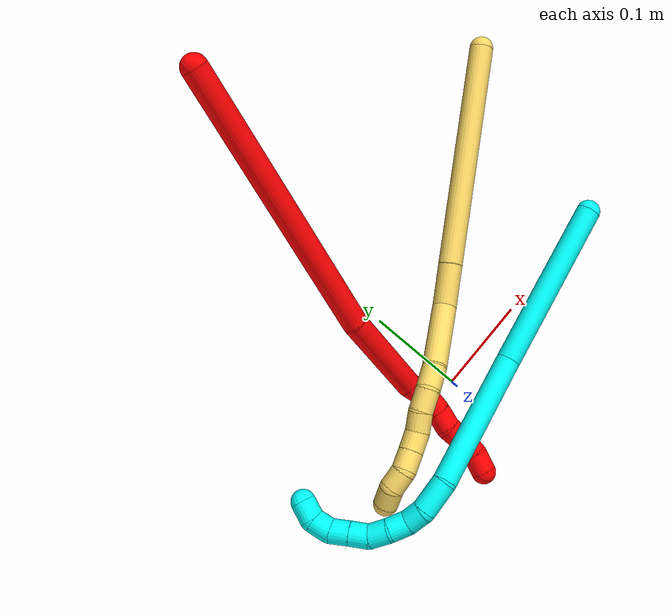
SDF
<sdf version="1.7">
 <world name="default">
  <model name="2">
   <static>0</static>
   <link name="2">
    <collision name="collision-cylinder-e_1_1_4">
     <pose>-0.050486 -0.10319 -0.079267 2.22582 -0.370117 -0.726042</pose>
     <geometry><cylinder><radius>0.0125</radius><length>0.279143</length></cylinder></geometry>
     <surface>
      <friction><ode><mu>1.16</mu><mu2>1.16</mu2><slip1>0</slip1><slip2>0</slip2></ode></friction>
      <contact><ode><kp>1e+06</kp><kd>1</kd><max_vel>0</max_vel><min_depth>0.001</min_depth></ode></contact>
     </surface>
    </collision>
    <visual name="visual-cylinder-e_1_1_4">
     <pose>-0.050486 -0.10319 -0.079267 2.22582 -0.370117 -0.726042</pose>
     <geometry><cylinder><radius>0.0125</radius><length>0.279143</length></cylinder></geometry>
     <material><ambient>1 0 0 1</ambient></material>
    </visual>
    <collision name="collision-cylinder-e_2_4_5">
     <pose>-0.109868 -0.246645 -0.185816 2.16632 -0.180881 -0.338715</pose>
     <geometry><cylinder><radius>0.0125</radius><length>0.098889</length></cylinder></geometry>
     <surface>
      <friction><ode><mu>1.16</mu><mu2>1.16</mu2><slip1>0</slip1><slip2>0</slip2></ode></friction>
      <contact><ode><kp>1e+06</kp><kd>1</kd><max_vel>0</max_vel><min_depth>0.001</min_depth></ode></contact>
     </surface>
    </collision>
    <visual name="visual-cylinder-e_2_4_5">
     <pose>-0.109868 -0.246645 -0.185816 2.16632 -0.180881 -0.338715</pose>
     <geometry><cylinder><radius>0.0125</radius><length>0.098889</length></cylinder></geometry>
     <material><ambient>1 0 0 1</ambient></material>
    </visual>
    <collision name="collision-cylinder-e_3_5_6">
     <pose>-0.122179 -0.296604 -0.214586 1.72296 -0.335178 -0.389202</pose>
     <geometry><cylinder><radius>0.0125</radius><length>0.02077</length></cylinder></geometry>
     <surface>
      <friction><ode><mu>1.16</mu><mu2>1.16</mu2><slip1>0</slip1><slip2>0</slip2></ode></friction>
      <contact><ode><kp>1e+06</kp><kd>1</kd><max_vel>0</max_vel><min_depth>0.001</min_depth></ode></contact>
     </surface>
    </collision>
    <visual name="visual-cylinder-e_3_5_6">
     <pose>-0.122179 -0.296604 -0.214586 1.72296 -0.335178 -0.389202</pose>
     <geometry><cylinder><radius>0.0125</radius><length>0.02077</length></cylinder></geometry>
     <material><ambient>1 0 0 1</ambient></material>
    </visual>
    <collision name="collision-cylinder-e_4_6_7">
     <pose>-0.130624 -0.314691 -0.22006 2.01431 -0.49603 -0.762143</pose>
     <geometry><cylinder><radius>0.0125</radius><length>0.021134</length></cylinder></geometry>
     <surface>
      <friction><ode><mu>1.16</mu><mu2>1.16</mu2><slip1>0</slip1><slip2>0</slip2></ode></friction>
      <contact><ode><kp>1e+06</kp><kd>1</kd><max_vel>0</max_vel><min_depth>0.001</min_depth></ode></contact>
     </surface>
    </collision>
    <visual name="visual-cylinder-e_4_6_7">
     <pose>-0.130624 -0.314691 -0.22006 2.01431 -0.49603 -0.762143</pose>
     <geometry><cylinder><radius>0.0125</radius><length>0.021134</length></cylinder></geometry>
     <material><ambient>1 0 0 1</ambient></material>
    </visual>
    <collision name="collision-cylinder-e_5_7_8">
     <pose>-0.142248 -0.329816 -0.22746 2.03998 -0.718267 -1.09724</pose>
     <geometry><cylinder><radius>0.0125</radius><length>0.020044</length></cylinder></geometry>
     <surface>
      <friction><ode><mu>1.16</mu><mu2>1.16</mu2><slip1>0</slip1><slip2>0</slip2></ode></friction>
      <contact><ode><kp>1e+06</kp><kd>1</kd><max_vel>0</max_vel><min_depth>0.001</min_depth></ode></contact>
     </surface>
    </collision>
    <visual name="visual-cylinder-e_5_7_8">
     <pose>-0.142248 -0.329816 -0.22746 2.03998 -0.718267 -1.09724</pose>
     <geometry><cylinder><radius>0.0125</radius><length>0.020044</length></cylinder></geometry>
     <material><ambient>1 0 0 1</ambient></material>
    </visual>
    <collision name="collision-cylinder-e_6_8_9">
     <pose>-0.152746 -0.345369 -0.23351 1.86127 -0.400814 -0.532524</pose>
     <geometry><cylinder><radius>0.0125</radius><length>0.020001</length></cylinder></geometry>
     <surface>
      <friction><ode><mu>1.16</mu><mu2>1.16</mu2><slip1>0</slip1><slip2>0</slip2></ode></friction>
      <contact><ode><kp>1e+06</kp><kd>1</kd><max_vel>0</max_vel><min_depth>0.001</min_depth></ode></contact>
     </surface>
    </collision>
    <visual name="visual-cylinder-e_6_8_9">
     <pose>-0.152746 -0.345369 -0.23351 1.86127 -0.400814 -0.532524</pose>
     <geometry><cylinder><radius>0.0125</radius><length>0.020001</length></cylinder></geometry>
     <material><ambient>1 0 0 1</ambient></material>
    </visual>
    <collision name="collision-cylinder-e_7_9_10">
     <pose>-0.162995 -0.361774 -0.237665 1.76841 -0.687323 -0.823339</pose>
     <geometry><cylinder><radius>0.0125</radius><length>0.020009</length></cylinder></geometry>
     <surface>
      <friction><ode><mu>1.16</mu><mu2>1.16</mu2><slip1>0</slip1><slip2>0</slip2></ode></friction>
      <contact><ode><kp>1e+06</kp><kd>1</kd><max_vel>0</max_vel><min_depth>0.001</min_depth></ode></contact>
     </surface>
    </collision>
    <visual name="visual-cylinder-e_7_9_10">
     <pose>-0.162995 -0.361774 -0.237665 1.76841 -0.687323 -0.823339</pose>
     <geometry><cylinder><radius>0.0125</radius><length>0.020009</length></cylinder></geometry>
     <material><ambient>1 0 0 1</ambient></material>
    </visual>
    <collision name="collision-cylinder-e_8_10_2">
     <pose>-0.176718 -0.375204 -0.242576 2.09656 -0.828799 -1.30453</pose>
     <geometry><cylinder><radius>0.0125</radius><length>0.02001</length></cylinder></geometry>
     <surface>
      <friction><ode><mu>1.16</mu><mu2>1.16</mu2><slip1>0</slip1><slip2>0</slip2></ode></friction>
      <contact><ode><kp>1e+06</kp><kd>1</kd><max_vel>0</max_vel><min_depth>0.001</min_depth></ode></contact>
     </surface>
    </collision>
    <visual name="visual-cylinder-e_8_10_2">
     <pose>-0.176718 -0.375204 -0.242576 2.09656 -0.828799 -1.30453</pose>
     <geometry><cylinder><radius>0.0125</radius><length>0.02001</length></cylinder></geometry>
     <material><ambient>1 0 0 1</ambient></material>
    </visual>
    <collision name="collision-sphere-2">
     <pose>-0.184092 -0.381052 -0.245969 0 -0 0</pose>
     <geometry><sphere><radius>0.0125</radius></sphere></geometry>
     <surface>
      <friction><ode><mu>1.16</mu><mu2>1.16</mu2><slip1>0</slip1><slip2>0</slip2></ode></friction>
      <contact><ode><kp>1e+06</kp><kd>1</kd><max_vel>0</max_vel><min_depth>0.001</min_depth></ode></contact>
     </surface>
    </collision>
    <visual name="visual-sphere-2">
     <pose>-0.184092 -0.381052 -0.245969 0 -0 0</pose>
     <geometry><sphere><radius>0.0125</radius></sphere></geometry>
     <material><ambient>1 0 0 1</ambient></material>
    </visual>
    <collision name="collision-sphere-10">
     <pose>-0.169343 -0.369356 -0.239183 0 -0 0</pose>
     <geometry><sphere><radius>0.0125</radius></sphere></geometry>
     <surface>
      <friction><ode><mu>1.16</mu><mu2>1.16</mu2><slip1>0</slip1><slip2>0</slip2></ode></friction>
      <contact><ode><kp>1e+06</kp><kd>1</kd><max_vel>0</max_vel><min_depth>0.001</min_depth></ode></contact>
     </surface>
    </collision>
    <visual name="visual-sphere-10">
     <pose>-0.169343 -0.369356 -0.239183 0 -0 0</pose>
     <geometry><sphere><radius>0.0125</radius></sphere></geometry>
     <material><ambient>1 0 0 1</ambient></material>
    </visual>
    <collision name="collision-sphere-9">
     <pose>-0.156647 -0.354191 -0.236147 0 -0 0</pose>
     <geometry><sphere><radius>0.0125</radius></sphere></geometry>
     <surface>
      <friction><ode><mu>1.16</mu><mu2>1.16</mu2><slip1>0</slip1><slip2>0</slip2></ode></friction>
      <contact><ode><kp>1e+06</kp><kd>1</kd><max_vel>0</max_vel><min_depth>0.001</min_depth></ode></contact>
     </surface>
    </collision>
    <visual name="visual-sphere-9">
     <pose>-0.156647 -0.354191 -0.236147 0 -0 0</pose>
     <geometry><sphere><radius>0.0125</radius></sphere></geometry>
     <material><ambient>1 0 0 1</ambient></material>
    </visual>
    <collision name="collision-sphere-4">
     <pose>-0.100973 -0.20638 -0.158533 0 -0 0</pose>
     <geometry><sphere><radius>0.0125</radius></sphere></geometry>
     <surface>
      <friction><ode><mu>1.16</mu><mu2>1.16</mu2><slip1>0</slip1><slip2>0</slip2></ode></friction>
      <contact><ode><kp>1e+06</kp><kd>1</kd><max_vel>0</max_vel><min_depth>0.001</min_depth></ode></contact>
     </surface>
    </collision>
    <visual name="visual-sphere-4">
     <pose>-0.100973 -0.20638 -0.158533 0 -0 0</pose>
     <geometry><sphere><radius>0.0125</radius></sphere></geometry>
     <material><ambient>1 0 0 1</ambient></material>
    </visual>
    <collision name="collision-sphere-1">
     <geometry><sphere><radius>0.0125</radius></sphere></geometry>
     <surface>
      <friction><ode><mu>1.16</mu><mu2>1.16</mu2><slip1>0</slip1><slip2>0</slip2></ode></friction>
      <contact><ode><kp>1e+06</kp><kd>1</kd><max_vel>0</max_vel><min_depth>0.001</min_depth></ode></contact>
     </surface>
    </collision>
    <visual name="visual-sphere-1">
     <geometry><sphere><radius>0.0125</radius></sphere></geometry>
     <material><ambient>1 0 0 1</ambient></material>
    </visual>
    <collision name="collision-sphere-8">
     <pose>-0.148844 -0.336547 -0.230872 0 -0 0</pose>
     <geometry><sphere><radius>0.0125</radius></sphere></geometry>
     <surface>
      <friction><ode><mu>1.16</mu><mu2>1.16</mu2><slip1>0</slip1><slip2>0</slip2></ode></friction>
      <contact><ode><kp>1e+06</kp><kd>1</kd><max_vel>0</max_vel><min_depth>0.001</min_depth></ode></contact>
     </surface>
    </collision>
    <visual name="visual-sphere-8">
     <pose>-0.148844 -0.336547 -0.230872 0 -0 0</pose>
     <geometry><sphere><radius>0.0125</radius></sphere></geometry>
     <material><ambient>1 0 0 1</ambient></material>
    </visual>
    <collision name="collision-sphere-5">
     <pose>-0.118763 -0.28691 -0.2131 0 -0 0</pose>
     <geometry><sphere><radius>0.0125</radius></sphere></geometry>
     <surface>
      <friction><ode><mu>1.16</mu><mu2>1.16</mu2><slip1>0</slip1><slip2>0</slip2></ode></friction>
      <contact><ode><kp>1e+06</kp><kd>1</kd><max_vel>0</max_vel><min_depth>0.001</min_depth></ode></contact>
     </surface>
    </collision>
    <visual name="visual-sphere-5">
     <pose>-0.118763 -0.28691 -0.2131 0 -0 0</pose>
     <geometry><sphere><radius>0.0125</radius></sphere></geometry>
     <material><ambient>1 0 0 1</ambient></material>
    </visual>
    <collision name="collision-sphere-6">
     <pose>-0.125595 -0.306297 -0.216072 0 -0 0</pose>
     <geometry><sphere><radius>0.0125</radius></sphere></geometry>
     <surface>
      <friction><ode><mu>1.16</mu><mu2>1.16</mu2><slip1>0</slip1><slip2>0</slip2></ode></friction>
      <contact><ode><kp>1e+06</kp><kd>1</kd><max_vel>0</max_vel><min_depth>0.001</min_depth></ode></contact>
     </surface>
    </collision>
    <visual name="visual-sphere-6">
     <pose>-0.125595 -0.306297 -0.216072 0 -0 0</pose>
     <geometry><sphere><radius>0.0125</radius></sphere></geometry>
     <material><ambient>1 0 0 1</ambient></material>
    </visual>
    <collision name="collision-sphere-7">
     <pose>-0.135653 -0.323086 -0.224048 0 -0 0</pose>
     <geometry><sphere><radius>0.0125</radius></sphere></geometry>
     <surface>
      <friction><ode><mu>1.16</mu><mu2>1.16</mu2><slip1>0</slip1><slip2>0</slip2></ode></friction>
      <contact><ode><kp>1e+06</kp><kd>1</kd><max_vel>0</max_vel><min_depth>0.001</min_depth></ode></contact>
     </surface>
    </collision>
    <visual name="visual-sphere-7">
     <pose>-0.135653 -0.323086 -0.224048 0 -0 0</pose>
     <geometry><sphere><radius>0.0125</radius></sphere></geometry>
     <material><ambient>1 0 0 1</ambient></material>
    </visual>
    <inertial>
     <pose>-0.085919 -0.188543 -0.136897 0 -0 0</pose>
     <mass>0.5</mass>
     <inertia>
      <ixx>0.000179</ixx>
      <ixy>0</ixy>
      <ixz>0</ixz>
      <iyy>-0.001713</iyy>
      <iyz>0</iyz>
      <izz>0.002084</izz>
     </inertia>
    </inertial>
   </link>
   <pose>0.063946 0.348962 0.239665 0.483252 0.647339 0.787085</pose>
  </model>
  <model name="3">
   <static>0</static>
   <link name="3">
    <collision name="collision-cylinder-e_1_1_4">
     <pose>-0.075205 0.017355 -0.047819 -2.79344 -0.976062 2.50182</pose>
     <geometry><cylinder><radius>0.0125</radius><length>0.181588</length></cylinder></geometry>
     <surface>
      <friction><ode><mu>1.16</mu><mu2>1.16</mu2><slip1>0</slip1><slip2>0</slip2></ode></friction>
      <contact><ode><kp>1e+06</kp><kd>1</kd><max_vel>0</max_vel><min_depth>0.001</min_depth></ode></contact>
     </surface>
    </collision>
    <visual name="visual-cylinder-e_1_1_4">
     <pose>-0.075205 0.017355 -0.047819 -2.79344 -0.976062 2.50182</pose>
     <geometry><cylinder><radius>0.0125</radius><length>0.181588</length></cylinder></geometry>
     <material><ambient>0.003922 1 0.996078 1</ambient></material>
    </visual>
    <collision name="collision-cylinder-e_2_4_5">
     <pose>-0.209282 0.036632 -0.135302 -3.09317 -0.977389 3.05057</pose>
     <geometry><cylinder><radius>0.0125</radius><length>0.142028</length></cylinder></geometry>
     <surface>
      <friction><ode><mu>1.16</mu><mu2>1.16</mu2><slip1>0</slip1><slip2>0</slip2></ode></friction>
      <contact><ode><kp>1e+06</kp><kd>1</kd><max_vel>0</max_vel><min_depth>0.001</min_depth></ode></contact>
     </surface>
    </collision>
    <visual name="visual-cylinder-e_2_4_5">
     <pose>-0.209282 0.036632 -0.135302 -3.09317 -0.977389 3.05057</pose>
     <geometry><cylinder><radius>0.0125</radius><length>0.142028</length></cylinder></geometry>
     <material><ambient>0.003922 1 0.996078 1</ambient></material>
    </visual>
    <collision name="collision-cylinder-e_3_5_6">
     <pose>-0.2835 0.042605 -0.181915 -2.61389 -1.08796 2.30149</pose>
     <geometry><cylinder><radius>0.0125</radius><length>0.03465</length></cylinder></geometry>
     <surface>
      <friction><ode><mu>1.16</mu><mu2>1.16</mu2><slip1>0</slip1><slip2>0</slip2></ode></friction>
      <contact><ode><kp>1e+06</kp><kd>1</kd><max_vel>0</max_vel><min_depth>0.001</min_depth></ode></contact>
     </surface>
    </collision>
    <visual name="visual-cylinder-e_3_5_6">
     <pose>-0.2835 0.042605 -0.181915 -2.61389 -1.08796 2.30149</pose>
     <geometry><cylinder><radius>0.0125</radius><length>0.03465</length></cylinder></geometry>
     <material><ambient>0.003922 1 0.996078 1</ambient></material>
    </visual>
    <collision name="collision-cylinder-e_4_6_7">
     <pose>-0.307837 0.051116 -0.189478 -1.70754 -1.10658 1.23275</pose>
     <geometry><cylinder><radius>0.0125</radius><length>0.020114</length></cylinder></geometry>
     <surface>
      <friction><ode><mu>1.16</mu><mu2>1.16</mu2><slip1>0</slip1><slip2>0</slip2></ode></friction>
      <contact><ode><kp>1e+06</kp><kd>1</kd><max_vel>0</max_vel><min_depth>0.001</min_depth></ode></contact>
     </surface>
    </collision>
    <visual name="visual-cylinder-e_4_6_7">
     <pose>-0.307837 0.051116 -0.189478 -1.70754 -1.10658 1.23275</pose>
     <geometry><cylinder><radius>0.0125</radius><length>0.020114</length></cylinder></geometry>
     <material><ambient>0.003922 1 0.996078 1</ambient></material>
    </visual>
    <collision name="collision-cylinder-e_5_7_8">
     <pose>-0.326971 0.056483 -0.189037 -0.70952 -1.43457 0.625058</pose>
     <geometry><cylinder><radius>0.0125</radius><length>0.020473</length></cylinder></geometry>
     <surface>
      <friction><ode><mu>1.16</mu><mu2>1.16</mu2><slip1>0</slip1><slip2>0</slip2></ode></friction>
      <contact><ode><kp>1e+06</kp><kd>1</kd><max_vel>0</max_vel><min_depth>0.001</min_depth></ode></contact>
     </surface>
    </collision>
    <visual name="visual-cylinder-e_5_7_8">
     <pose>-0.326971 0.056483 -0.189037 -0.70952 -1.43457 0.625058</pose>
     <geometry><cylinder><radius>0.0125</radius><length>0.020473</length></cylinder></geometry>
     <material><ambient>0.003922 1 0.996078 1</ambient></material>
    </visual>
    <collision name="collision-cylinder-e_6_8_9">
     <pose>-0.346859 0.060234 -0.18555 -0.863556 -1.20407 0.61325</pose>
     <geometry><cylinder><radius>0.0125</radius><length>0.020881</length></cylinder></geometry>
     <surface>
      <friction><ode><mu>1.16</mu><mu2>1.16</mu2><slip1>0</slip1><slip2>0</slip2></ode></friction>
      <contact><ode><kp>1e+06</kp><kd>1</kd><max_vel>0</max_vel><min_depth>0.001</min_depth></ode></contact>
     </surface>
    </collision>
    <visual name="visual-cylinder-e_6_8_9">
     <pose>-0.346859 0.060234 -0.18555 -0.863556 -1.20407 0.61325</pose>
     <geometry><cylinder><radius>0.0125</radius><length>0.020881</length></cylinder></geometry>
     <material><ambient>0.003922 1 0.996078 1</ambient></material>
    </visual>
    <collision name="collision-cylinder-e_7_9_10">
     <pose>-0.364674 0.063095 -0.177113 -0.002479 -0.930954 0.001245</pose>
     <geometry><cylinder><radius>0.0125</radius><length>0.020116</length></cylinder></geometry>
     <surface>
      <friction><ode><mu>1.16</mu><mu2>1.16</mu2><slip1>0</slip1><slip2>0</slip2></ode></friction>
      <contact><ode><kp>1e+06</kp><kd>1</kd><max_vel>0</max_vel><min_depth>0.001</min_depth></ode></contact>
     </surface>
    </collision>
    <visual name="visual-cylinder-e_7_9_10">
     <pose>-0.364674 0.063095 -0.177113 -0.002479 -0.930954 0.001245</pose>
     <geometry><cylinder><radius>0.0125</radius><length>0.020116</length></cylinder></geometry>
     <material><ambient>0.003922 1 0.996078 1</ambient></material>
    </visual>
    <collision name="collision-cylinder-e_8_10_11">
     <pose>-0.380914 0.063225 -0.16532 -0.019982 -0.954502 0.010333</pose>
     <geometry><cylinder><radius>0.0125</radius><length>0.020027</length></cylinder></geometry>
     <surface>
      <friction><ode><mu>1.16</mu><mu2>1.16</mu2><slip1>0</slip1><slip2>0</slip2></ode></friction>
      <contact><ode><kp>1e+06</kp><kd>1</kd><max_vel>0</max_vel><min_depth>0.001</min_depth></ode></contact>
     </surface>
    </collision>
    <visual name="visual-cylinder-e_8_10_11">
     <pose>-0.380914 0.063225 -0.16532 -0.019982 -0.954502 0.010333</pose>
     <geometry><cylinder><radius>0.0125</radius><length>0.020027</length></cylinder></geometry>
     <material><ambient>0.003922 1 0.996078 1</ambient></material>
    </visual>
    <collision name="collision-cylinder-e_9_11_12">
     <pose>-0.394178 0.061035 -0.151219 0.270492 -0.533205 -0.074292</pose>
     <geometry><cylinder><radius>0.0125</radius><length>0.020038</length></cylinder></geometry>
     <surface>
      <friction><ode><mu>1.16</mu><mu2>1.16</mu2><slip1>0</slip1><slip2>0</slip2></ode></friction>
      <contact><ode><kp>1e+06</kp><kd>1</kd><max_vel>0</max_vel><min_depth>0.001</min_depth></ode></contact>
     </surface>
    </collision>
    <visual name="visual-cylinder-e_9_11_12">
     <pose>-0.394178 0.061035 -0.151219 0.270492 -0.533205 -0.074292</pose>
     <geometry><cylinder><radius>0.0125</radius><length>0.020038</length></cylinder></geometry>
     <material><ambient>0.003922 1 0.996078 1</ambient></material>
    </visual>
    <collision name="collision-cylinder-e_10_12_2">
     <pose>-0.399594 0.056822 -0.13305 0.191222 -0.032168 -0.003085</pose>
     <geometry><cylinder><radius>0.0125</radius><length>0.020084</length></cylinder></geometry>
     <surface>
      <friction><ode><mu>1.16</mu><mu2>1.16</mu2><slip1>0</slip1><slip2>0</slip2></ode></friction>
      <contact><ode><kp>1e+06</kp><kd>1</kd><max_vel>0</max_vel><min_depth>0.001</min_depth></ode></contact>
     </surface>
    </collision>
    <visual name="visual-cylinder-e_10_12_2">
     <pose>-0.399594 0.056822 -0.13305 0.191222 -0.032168 -0.003085</pose>
     <geometry><cylinder><radius>0.0125</radius><length>0.020084</length></cylinder></geometry>
     <material><ambient>0.003922 1 0.996078 1</ambient></material>
    </visual>
    <collision name="collision-sphere-2">
     <pose>-0.399917 0.054914 -0.123196 0 -0 0</pose>
     <geometry><sphere><radius>0.0125</radius></sphere></geometry>
     <surface>
      <friction><ode><mu>1.16</mu><mu2>1.16</mu2><slip1>0</slip1><slip2>0</slip2></ode></friction>
      <contact><ode><kp>1e+06</kp><kd>1</kd><max_vel>0</max_vel><min_depth>0.001</min_depth></ode></contact>
     </surface>
    </collision>
    <visual name="visual-sphere-2">
     <pose>-0.399917 0.054914 -0.123196 0 -0 0</pose>
     <geometry><sphere><radius>0.0125</radius></sphere></geometry>
     <material><ambient>0.003922 1 0.996078 1</ambient></material>
    </visual>
    <collision name="collision-sphere-12">
     <pose>-0.399271 0.05873 -0.142904 0 -0 0</pose>
     <geometry><sphere><radius>0.0125</radius></sphere></geometry>
     <surface>
      <friction><ode><mu>1.16</mu><mu2>1.16</mu2><slip1>0</slip1><slip2>0</slip2></ode></friction>
      <contact><ode><kp>1e+06</kp><kd>1</kd><max_vel>0</max_vel><min_depth>0.001</min_depth></ode></contact>
     </surface>
    </collision>
    <visual name="visual-sphere-12">
     <pose>-0.399271 0.05873 -0.142904 0 -0 0</pose>
     <geometry><sphere><radius>0.0125</radius></sphere></geometry>
     <material><ambient>0.003922 1 0.996078 1</ambient></material>
    </visual>
    <collision name="collision-sphere-11">
     <pose>-0.389085 0.063341 -0.159534 0 -0 0</pose>
     <geometry><sphere><radius>0.0125</radius></sphere></geometry>
     <surface>
      <friction><ode><mu>1.16</mu><mu2>1.16</mu2><slip1>0</slip1><slip2>0</slip2></ode></friction>
      <contact><ode><kp>1e+06</kp><kd>1</kd><max_vel>0</max_vel><min_depth>0.001</min_depth></ode></contact>
     </surface>
    </collision>
    <visual name="visual-sphere-11">
     <pose>-0.389085 0.063341 -0.159534 0 -0 0</pose>
     <geometry><sphere><radius>0.0125</radius></sphere></geometry>
     <material><ambient>0.003922 1 0.996078 1</ambient></material>
    </visual>
    <collision name="collision-sphere-10">
     <pose>-0.372743 0.063109 -0.171107 0 -0 0</pose>
     <geometry><sphere><radius>0.0125</radius></sphere></geometry>
     <surface>
      <friction><ode><mu>1.16</mu><mu2>1.16</mu2><slip1>0</slip1><slip2>0</slip2></ode></friction>
      <contact><ode><kp>1e+06</kp><kd>1</kd><max_vel>0</max_vel><min_depth>0.001</min_depth></ode></contact>
     </surface>
    </collision>
    <visual name="visual-sphere-10">
     <pose>-0.372743 0.063109 -0.171107 0 -0 0</pose>
     <geometry><sphere><radius>0.0125</radius></sphere></geometry>
     <material><ambient>0.003922 1 0.996078 1</ambient></material>
    </visual>
    <collision name="collision-sphere-9">
     <pose>-0.356606 0.06308 -0.183118 0 -0 0</pose>
     <geometry><sphere><radius>0.0125</radius></sphere></geometry>
     <surface>
      <friction><ode><mu>1.16</mu><mu2>1.16</mu2><slip1>0</slip1><slip2>0</slip2></ode></friction>
      <contact><ode><kp>1e+06</kp><kd>1</kd><max_vel>0</max_vel><min_depth>0.001</min_depth></ode></contact>
     </surface>
    </collision>
    <visual name="visual-sphere-9">
     <pose>-0.356606 0.06308 -0.183118 0 -0 0</pose>
     <geometry><sphere><radius>0.0125</radius></sphere></geometry>
     <material><ambient>0.003922 1 0.996078 1</ambient></material>
    </visual>
    <collision name="collision-sphere-4">
     <pose>-0.150409 0.03471 -0.095638 0 -0 0</pose>
     <geometry><sphere><radius>0.0125</radius></sphere></geometry>
     <surface>
      <friction><ode><mu>1.16</mu><mu2>1.16</mu2><slip1>0</slip1><slip2>0</slip2></ode></friction>
      <contact><ode><kp>1e+06</kp><kd>1</kd><max_vel>0</max_vel><min_depth>0.001</min_depth></ode></contact>
     </surface>
    </collision>
    <visual name="visual-sphere-4">
     <pose>-0.150409 0.03471 -0.095638 0 -0 0</pose>
     <geometry><sphere><radius>0.0125</radius></sphere></geometry>
     <material><ambient>0.003922 1 0.996078 1</ambient></material>
    </visual>
    <collision name="collision-sphere-1">
     <geometry><sphere><radius>0.0125</radius></sphere></geometry>
     <surface>
      <friction><ode><mu>1.16</mu><mu2>1.16</mu2><slip1>0</slip1><slip2>0</slip2></ode></friction>
      <contact><ode><kp>1e+06</kp><kd>1</kd><max_vel>0</max_vel><min_depth>0.001</min_depth></ode></contact>
     </surface>
    </collision>
    <visual name="visual-sphere-1">
     <geometry><sphere><radius>0.0125</radius></sphere></geometry>
     <material><ambient>0.003922 1 0.996078 1</ambient></material>
    </visual>
    <collision name="collision-sphere-8">
     <pose>-0.337113 0.057388 -0.187983 0 -0 0</pose>
     <geometry><sphere><radius>0.0125</radius></sphere></geometry>
     <surface>
      <friction><ode><mu>1.16</mu><mu2>1.16</mu2><slip1>0</slip1><slip2>0</slip2></ode></friction>
      <contact><ode><kp>1e+06</kp><kd>1</kd><max_vel>0</max_vel><min_depth>0.001</min_depth></ode></contact>
     </surface>
    </collision>
    <visual name="visual-sphere-8">
     <pose>-0.337113 0.057388 -0.187983 0 -0 0</pose>
     <geometry><sphere><radius>0.0125</radius></sphere></geometry>
     <material><ambient>0.003922 1 0.996078 1</ambient></material>
    </visual>
    <collision name="collision-sphere-5">
     <pose>-0.268156 0.038554 -0.174965 0 -0 0</pose>
     <geometry><sphere><radius>0.0125</radius></sphere></geometry>
     <surface>
      <friction><ode><mu>1.16</mu><mu2>1.16</mu2><slip1>0</slip1><slip2>0</slip2></ode></friction>
      <contact><ode><kp>1e+06</kp><kd>1</kd><max_vel>0</max_vel><min_depth>0.001</min_depth></ode></contact>
     </surface>
    </collision>
    <visual name="visual-sphere-5">
     <pose>-0.268156 0.038554 -0.174965 0 -0 0</pose>
     <geometry><sphere><radius>0.0125</radius></sphere></geometry>
     <material><ambient>0.003922 1 0.996078 1</ambient></material>
    </visual>
    <collision name="collision-sphere-6">
     <pose>-0.298844 0.046655 -0.188864 0 -0 0</pose>
     <geometry><sphere><radius>0.0125</radius></sphere></geometry>
     <surface>
      <friction><ode><mu>1.16</mu><mu2>1.16</mu2><slip1>0</slip1><slip2>0</slip2></ode></friction>
      <contact><ode><kp>1e+06</kp><kd>1</kd><max_vel>0</max_vel><min_depth>0.001</min_depth></ode></contact>
     </surface>
    </collision>
    <visual name="visual-sphere-6">
     <pose>-0.298844 0.046655 -0.188864 0 -0 0</pose>
     <geometry><sphere><radius>0.0125</radius></sphere></geometry>
     <material><ambient>0.003922 1 0.996078 1</ambient></material>
    </visual>
    <collision name="collision-sphere-7">
     <pose>-0.31683 0.055577 -0.190092 0 -0 0</pose>
     <geometry><sphere><radius>0.0125</radius></sphere></geometry>
     <surface>
      <friction><ode><mu>1.16</mu><mu2>1.16</mu2><slip1>0</slip1><slip2>0</slip2></ode></friction>
      <contact><ode><kp>1e+06</kp><kd>1</kd><max_vel>0</max_vel><min_depth>0.001</min_depth></ode></contact>
     </surface>
    </collision>
    <visual name="visual-sphere-7">
     <pose>-0.31683 0.055577 -0.190092 0 -0 0</pose>
     <geometry><sphere><radius>0.0125</radius></sphere></geometry>
     <material><ambient>0.003922 1 0.996078 1</ambient></material>
    </visual>
    <inertial>
     <pose>-0.208442 0.036345 -0.11667 0 -0 0</pose>
     <mass>0.5</mass>
     <inertia>
      <ixx>-0.000207</ixx>
      <ixy>0</ixy>
      <ixz>0</ixz>
      <iyy>0.000914</iyy>
      <iyz>0</iyz>
      <izz>0.000519</izz>
     </inertia>
    </inertial>
   </link>
   <pose>0.231142 0.004229 0.012489 -1.91742 0.1458 -0.417225</pose>
  </model>
  <model name="5">
   <static>0</static>
   <link name="5">
    <collision name="collision-cylinder-e_1_1_4">
     <pose>-0.099185 -0.06424 0.005746 1.48159 -0.994235 -0.921212</pose>
     <geometry><cylinder><radius>0.0125</radius><length>0.236621</length></cylinder></geometry>
     <surface>
      <friction><ode><mu>1.16</mu><mu2>1.16</mu2><slip1>0</slip1><slip2>0</slip2></ode></friction>
      <contact><ode><kp>1e+06</kp><kd>1</kd><max_vel>0</max_vel><min_depth>0.001</min_depth></ode></contact>
     </surface>
    </collision>
    <visual name="visual-cylinder-e_1_1_4">
     <pose>-0.099185 -0.06424 0.005746 1.48159 -0.994235 -0.921212</pose>
     <geometry><cylinder><radius>0.0125</radius><length>0.236621</length></cylinder></geometry>
     <material><ambient>1 0.858824 0.4 1</ambient></material>
    </visual>
    <collision name="collision-cylinder-e_2_4_5">
     <pose>-0.217513 -0.139989 0.011915 1.53403 -1.0292 -0.997988</pose>
     <geometry><cylinder><radius>0.0125</radius><length>0.044682</length></cylinder></geometry>
     <surface>
      <friction><ode><mu>1.16</mu><mu2>1.16</mu2><slip1>0</slip1><slip2>0</slip2></ode></friction>
      <contact><ode><kp>1e+06</kp><kd>1</kd><max_vel>0</max_vel><min_depth>0.001</min_depth></ode></contact>
     </surface>
    </collision>
    <visual name="visual-cylinder-e_2_4_5">
     <pose>-0.217513 -0.139989 0.011915 1.53403 -1.0292 -0.997988</pose>
     <geometry><cylinder><radius>0.0125</radius><length>0.044682</length></cylinder></geometry>
     <material><ambient>1 0.858824 0.4 1</ambient></material>
    </visual>
    <collision name="collision-cylinder-e_3_5_6">
     <pose>-0.257443 -0.177516 0.023027 1.181 -0.636405 -0.434602</pose>
     <geometry><cylinder><radius>0.0125</radius><length>0.06995</length></cylinder></geometry>
     <surface>
      <friction><ode><mu>1.16</mu><mu2>1.16</mu2><slip1>0</slip1><slip2>0</slip2></ode></friction>
      <contact><ode><kp>1e+06</kp><kd>1</kd><max_vel>0</max_vel><min_depth>0.001</min_depth></ode></contact>
     </surface>
    </collision>
    <visual name="visual-cylinder-e_3_5_6">
     <pose>-0.257443 -0.177516 0.023027 1.181 -0.636405 -0.434602</pose>
     <geometry><cylinder><radius>0.0125</radius><length>0.06995</length></cylinder></geometry>
     <material><ambient>1 0.858824 0.4 1</ambient></material>
    </visual>
    <collision name="collision-cylinder-e_4_6_7">
     <pose>-0.286931 -0.211267 0.03766 1.09916 -0.786626 -0.497777</pose>
     <geometry><cylinder><radius>0.0125</radius><length>0.024583</length></cylinder></geometry>
     <surface>
      <friction><ode><mu>1.16</mu><mu2>1.16</mu2><slip1>0</slip1><slip2>0</slip2></ode></friction>
      <contact><ode><kp>1e+06</kp><kd>1</kd><max_vel>0</max_vel><min_depth>0.001</min_depth></ode></contact>
     </surface>
    </collision>
    <visual name="visual-cylinder-e_4_6_7">
     <pose>-0.286931 -0.211267 0.03766 1.09916 -0.786626 -0.497777</pose>
     <geometry><cylinder><radius>0.0125</radius><length>0.024583</length></cylinder></geometry>
     <material><ambient>1 0.858824 0.4 1</ambient></material>
    </visual>
    <collision name="collision-cylinder-e_5_7_8">
     <pose>-0.305797 -0.224127 0.043768 1.17123 -1.06985 -0.748909</pose>
     <geometry><cylinder><radius>0.0125</radius><length>0.023177</length></cylinder></geometry>
     <surface>
      <friction><ode><mu>1.16</mu><mu2>1.16</mu2><slip1>0</slip1><slip2>0</slip2></ode></friction>
      <contact><ode><kp>1e+06</kp><kd>1</kd><max_vel>0</max_vel><min_depth>0.001</min_depth></ode></contact>
     </surface>
    </collision>
    <visual name="visual-cylinder-e_5_7_8">
     <pose>-0.305797 -0.224127 0.043768 1.17123 -1.06985 -0.748909</pose>
     <geometry><cylinder><radius>0.0125</radius><length>0.023177</length></cylinder></geometry>
     <material><ambient>1 0.858824 0.4 1</ambient></material>
    </visual>
    <collision name="collision-cylinder-e_6_8_9">
     <pose>-0.325136 -0.233697 0.045677 1.6284 -1.11915 -1.17164</pose>
     <geometry><cylinder><radius>0.0125</radius><length>0.020394</length></cylinder></geometry>
     <surface>
      <friction><ode><mu>1.16</mu><mu2>1.16</mu2><slip1>0</slip1><slip2>0</slip2></ode></friction>
      <contact><ode><kp>1e+06</kp><kd>1</kd><max_vel>0</max_vel><min_depth>0.001</min_depth></ode></contact>
     </surface>
    </collision>
    <visual name="visual-cylinder-e_6_8_9">
     <pose>-0.325136 -0.233697 0.045677 1.6284 -1.11915 -1.17164</pose>
     <geometry><cylinder><radius>0.0125</radius><length>0.020394</length></cylinder></geometry>
     <material><ambient>1 0.858824 0.4 1</ambient></material>
    </visual>
    <collision name="collision-cylinder-e_7_9_10">
     <pose>-0.342502 -0.243524 0.048315 1.07754 -0.92975 -0.58254</pose>
     <geometry><cylinder><radius>0.0125</radius><length>0.02044</length></cylinder></geometry>
     <surface>
      <friction><ode><mu>1.16</mu><mu2>1.16</mu2><slip1>0</slip1><slip2>0</slip2></ode></friction>
      <contact><ode><kp>1e+06</kp><kd>1</kd><max_vel>0</max_vel><min_depth>0.001</min_depth></ode></contact>
     </surface>
    </collision>
    <visual name="visual-cylinder-e_7_9_10">
     <pose>-0.342502 -0.243524 0.048315 1.07754 -0.92975 -0.58254</pose>
     <geometry><cylinder><radius>0.0125</radius><length>0.02044</length></cylinder></geometry>
     <material><ambient>1 0.858824 0.4 1</ambient></material>
    </visual>
    <collision name="collision-cylinder-e_8_10_11">
     <pose>-0.358506 -0.254316 0.054481 1.02673 -0.89055 -0.525674</pose>
     <geometry><cylinder><radius>0.0125</radius><length>0.020101</length></cylinder></geometry>
     <surface>
      <friction><ode><mu>1.16</mu><mu2>1.16</mu2><slip1>0</slip1><slip2>0</slip2></ode></friction>
      <contact><ode><kp>1e+06</kp><kd>1</kd><max_vel>0</max_vel><min_depth>0.001</min_depth></ode></contact>
     </surface>
    </collision>
    <visual name="visual-cylinder-e_8_10_11">
     <pose>-0.358506 -0.254316 0.054481 1.02673 -0.89055 -0.525674</pose>
     <geometry><cylinder><radius>0.0125</radius><length>0.020101</length></cylinder></geometry>
     <material><ambient>1 0.858824 0.4 1</ambient></material>
    </visual>
    <collision name="collision-cylinder-e_9_11_12">
     <pose>-0.375775 -0.261063 0.060795 0.414556 -1.23283 -0.295819</pose>
     <geometry><cylinder><radius>0.0125</radius><length>0.020046</length></cylinder></geometry>
     <surface>
      <friction><ode><mu>1.16</mu><mu2>1.16</mu2><slip1>0</slip1><slip2>0</slip2></ode></friction>
      <contact><ode><kp>1e+06</kp><kd>1</kd><max_vel>0</max_vel><min_depth>0.001</min_depth></ode></contact>
     </surface>
    </collision>
    <visual name="visual-cylinder-e_9_11_12">
     <pose>-0.375775 -0.261063 0.060795 0.414556 -1.23283 -0.295819</pose>
     <geometry><cylinder><radius>0.0125</radius><length>0.020046</length></cylinder></geometry>
     <material><ambient>1 0.858824 0.4 1</ambient></material>
    </visual>
    <collision name="collision-cylinder-e_10_12_2">
     <pose>-0.395145 -0.262432 0.062502 3.11942 -1.43686 -3.11623</pose>
     <geometry><cylinder><radius>0.0125</radius><length>0.020007</length></cylinder></geometry>
     <surface>
      <friction><ode><mu>1.16</mu><mu2>1.16</mu2><slip1>0</slip1><slip2>0</slip2></ode></friction>
      <contact><ode><kp>1e+06</kp><kd>1</kd><max_vel>0</max_vel><min_depth>0.001</min_depth></ode></contact>
     </surface>
    </collision>
    <visual name="visual-cylinder-e_10_12_2">
     <pose>-0.395145 -0.262432 0.062502 3.11942 -1.43686 -3.11623</pose>
     <geometry><cylinder><radius>0.0125</radius><length>0.020007</length></cylinder></geometry>
     <material><ambient>1 0.858824 0.4 1</ambient></material>
    </visual>
    <collision name="collision-sphere-2">
     <pose>-0.405059 -0.262461 0.061166 0 -0 0</pose>
     <geometry><sphere><radius>0.0125</radius></sphere></geometry>
     <surface>
      <friction><ode><mu>1.16</mu><mu2>1.16</mu2><slip1>0</slip1><slip2>0</slip2></ode></friction>
      <contact><ode><kp>1e+06</kp><kd>1</kd><max_vel>0</max_vel><min_depth>0.001</min_depth></ode></contact>
     </surface>
    </collision>
    <visual name="visual-sphere-2">
     <pose>-0.405059 -0.262461 0.061166 0 -0 0</pose>
     <geometry><sphere><radius>0.0125</radius></sphere></geometry>
     <material><ambient>1 0.858824 0.4 1</ambient></material>
    </visual>
    <collision name="collision-sphere-12">
     <pose>-0.385231 -0.262402 0.063837 0 -0 0</pose>
     <geometry><sphere><radius>0.0125</radius></sphere></geometry>
     <surface>
      <friction><ode><mu>1.16</mu><mu2>1.16</mu2><slip1>0</slip1><slip2>0</slip2></ode></friction>
      <contact><ode><kp>1e+06</kp><kd>1</kd><max_vel>0</max_vel><min_depth>0.001</min_depth></ode></contact>
     </surface>
    </collision>
    <visual name="visual-sphere-12">
     <pose>-0.385231 -0.262402 0.063837 0 -0 0</pose>
     <geometry><sphere><radius>0.0125</radius></sphere></geometry>
     <material><ambient>1 0.858824 0.4 1</ambient></material>
    </visual>
    <collision name="collision-sphere-11">
     <pose>-0.366319 -0.259725 0.057753 0 -0 0</pose>
     <geometry><sphere><radius>0.0125</radius></sphere></geometry>
     <surface>
      <friction><ode><mu>1.16</mu><mu2>1.16</mu2><slip1>0</slip1><slip2>0</slip2></ode></friction>
      <contact><ode><kp>1e+06</kp><kd>1</kd><max_vel>0</max_vel><min_depth>0.001</min_depth></ode></contact>
     </surface>
    </collision>
    <visual name="visual-sphere-11">
     <pose>-0.366319 -0.259725 0.057753 0 -0 0</pose>
     <geometry><sphere><radius>0.0125</radius></sphere></geometry>
     <material><ambient>1 0.858824 0.4 1</ambient></material>
    </visual>
    <collision name="collision-sphere-10">
     <pose>-0.350693 -0.248907 0.051209 0 -0 0</pose>
     <geometry><sphere><radius>0.0125</radius></sphere></geometry>
     <surface>
      <friction><ode><mu>1.16</mu><mu2>1.16</mu2><slip1>0</slip1><slip2>0</slip2></ode></friction>
      <contact><ode><kp>1e+06</kp><kd>1</kd><max_vel>0</max_vel><min_depth>0.001</min_depth></ode></contact>
     </surface>
    </collision>
    <visual name="visual-sphere-10">
     <pose>-0.350693 -0.248907 0.051209 0 -0 0</pose>
     <geometry><sphere><radius>0.0125</radius></sphere></geometry>
     <material><ambient>1 0.858824 0.4 1</ambient></material>
    </visual>
    <collision name="collision-sphere-9">
     <pose>-0.33431 -0.23814 0.045421 0 -0 0</pose>
     <geometry><sphere><radius>0.0125</radius></sphere></geometry>
     <surface>
      <friction><ode><mu>1.16</mu><mu2>1.16</mu2><slip1>0</slip1><slip2>0</slip2></ode></friction>
      <contact><ode><kp>1e+06</kp><kd>1</kd><max_vel>0</max_vel><min_depth>0.001</min_depth></ode></contact>
     </surface>
    </collision>
    <visual name="visual-sphere-9">
     <pose>-0.33431 -0.23814 0.045421 0 -0 0</pose>
     <geometry><sphere><radius>0.0125</radius></sphere></geometry>
     <material><ambient>1 0.858824 0.4 1</ambient></material>
    </visual>
    <collision name="collision-sphere-4">
     <pose>-0.198369 -0.12848 0.011491 0 -0 0</pose>
     <geometry><sphere><radius>0.0125</radius></sphere></geometry>
     <surface>
      <friction><ode><mu>1.16</mu><mu2>1.16</mu2><slip1>0</slip1><slip2>0</slip2></ode></friction>
      <contact><ode><kp>1e+06</kp><kd>1</kd><max_vel>0</max_vel><min_depth>0.001</min_depth></ode></contact>
     </surface>
    </collision>
    <visual name="visual-sphere-4">
     <pose>-0.198369 -0.12848 0.011491 0 -0 0</pose>
     <geometry><sphere><radius>0.0125</radius></sphere></geometry>
     <material><ambient>1 0.858824 0.4 1</ambient></material>
    </visual>
    <collision name="collision-sphere-1">
     <geometry><sphere><radius>0.0125</radius></sphere></geometry>
     <surface>
      <friction><ode><mu>1.16</mu><mu2>1.16</mu2><slip1>0</slip1><slip2>0</slip2></ode></friction>
      <contact><ode><kp>1e+06</kp><kd>1</kd><max_vel>0</max_vel><min_depth>0.001</min_depth></ode></contact>
     </surface>
    </collision>
    <visual name="visual-sphere-1">
     <geometry><sphere><radius>0.0125</radius></sphere></geometry>
     <material><ambient>1 0.858824 0.4 1</ambient></material>
    </visual>
    <collision name="collision-sphere-8">
     <pose>-0.315961 -0.229254 0.045933 0 -0 0</pose>
     <geometry><sphere><radius>0.0125</radius></sphere></geometry>
     <surface>
      <friction><ode><mu>1.16</mu><mu2>1.16</mu2><slip1>0</slip1><slip2>0</slip2></ode></friction>
      <contact><ode><kp>1e+06</kp><kd>1</kd><max_vel>0</max_vel><min_depth>0.001</min_depth></ode></contact>
     </surface>
    </collision>
    <visual name="visual-sphere-8">
     <pose>-0.315961 -0.229254 0.045933 0 -0 0</pose>
     <geometry><sphere><radius>0.0125</radius></sphere></geometry>
     <material><ambient>1 0.858824 0.4 1</ambient></material>
    </visual>
    <collision name="collision-sphere-5">
     <pose>-0.236657 -0.151498 0.012338 0 -0 0</pose>
     <geometry><sphere><radius>0.0125</radius></sphere></geometry>
     <surface>
      <friction><ode><mu>1.16</mu><mu2>1.16</mu2><slip1>0</slip1><slip2>0</slip2></ode></friction>
      <contact><ode><kp>1e+06</kp><kd>1</kd><max_vel>0</max_vel><min_depth>0.001</min_depth></ode></contact>
     </surface>
    </collision>
    <visual name="visual-sphere-5">
     <pose>-0.236657 -0.151498 0.012338 0 -0 0</pose>
     <geometry><sphere><radius>0.0125</radius></sphere></geometry>
     <material><ambient>1 0.858824 0.4 1</ambient></material>
    </visual>
    <collision name="collision-sphere-6">
     <pose>-0.278229 -0.203534 0.033716 0 -0 0</pose>
     <geometry><sphere><radius>0.0125</radius></sphere></geometry>
     <surface>
      <friction><ode><mu>1.16</mu><mu2>1.16</mu2><slip1>0</slip1><slip2>0</slip2></ode></friction>
      <contact><ode><kp>1e+06</kp><kd>1</kd><max_vel>0</max_vel><min_depth>0.001</min_depth></ode></contact>
     </surface>
    </collision>
    <visual name="visual-sphere-6">
     <pose>-0.278229 -0.203534 0.033716 0 -0 0</pose>
     <geometry><sphere><radius>0.0125</radius></sphere></geometry>
     <material><ambient>1 0.858824 0.4 1</ambient></material>
    </visual>
    <collision name="collision-sphere-7">
     <pose>-0.295632 -0.219 0.041603 0 -0 0</pose>
     <geometry><sphere><radius>0.0125</radius></sphere></geometry>
     <surface>
      <friction><ode><mu>1.16</mu><mu2>1.16</mu2><slip1>0</slip1><slip2>0</slip2></ode></friction>
      <contact><ode><kp>1e+06</kp><kd>1</kd><max_vel>0</max_vel><min_depth>0.001</min_depth></ode></contact>
     </surface>
    </collision>
    <visual name="visual-sphere-7">
     <pose>-0.295632 -0.219 0.041603 0 -0 0</pose>
     <geometry><sphere><radius>0.0125</radius></sphere></geometry>
     <material><ambient>1 0.858824 0.4 1</ambient></material>
    </visual>
    <inertial>
     <pose>-0.203227 -0.1392 0.021852 0 -0 0</pose>
     <mass>0.5</mass>
     <inertia>
      <ixx>-0.000136</ixx>
      <ixy>0</ixy>
      <ixz>0</ixz>
      <iyy>0.000313</iyy>
      <iyz>0</iyz>
      <izz>0.001611</izz>
     </inertia>
    </inertial>
   </link>
   <pose>0.294047 0.20326 0.012384 -0.874027 -0.406926 0.228989</pose>
  </model>
 </world>
</sdf>
